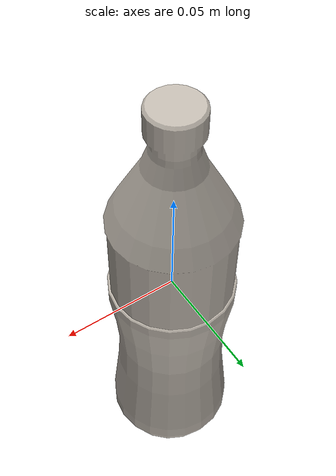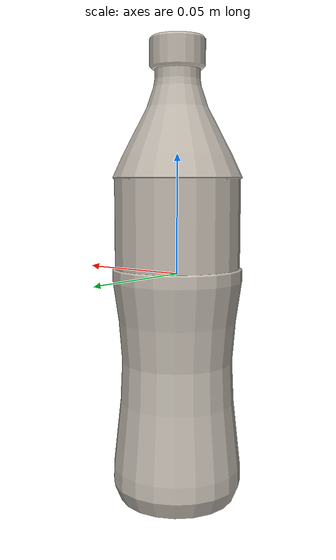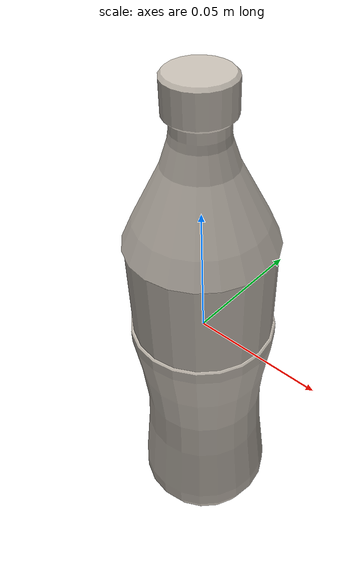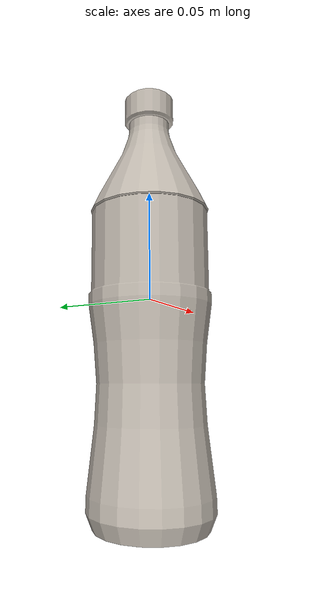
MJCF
<mujoco model="bottled_water_17">
  <asset>
    <mesh file="visual/model_normalized_0.obj" name="model_normalized_0_vis" scale="0.193939 0.193939 0.193939" refquat="1.0 0.0 0.0 0.0"/>
    <mesh file="visual/model_normalized_1.obj" name="model_normalized_1_vis" scale="0.193939 0.193939 0.193939" refquat="1.0 0.0 0.0 0.0"/>
    <mesh file="collision/model_normalized_collision_22.obj" name="model_normalized_collision_22._coll" scale="0.193939 0.193939 0.193939" refquat="1.0 0.0 0.0 0.0"/>
    <mesh file="collision/model_normalized_collision_23.obj" name="model_normalized_collision_23._coll" scale="0.193939 0.193939 0.193939" refquat="1.0 0.0 0.0 0.0"/>
    <mesh file="collision/model_normalized_collision_21.obj" name="model_normalized_collision_21._coll" scale="0.193939 0.193939 0.193939" refquat="1.0 0.0 0.0 0.0"/>
    <mesh file="collision/model_normalized_collision_20.obj" name="model_normalized_collision_20._coll" scale="0.193939 0.193939 0.193939" refquat="1.0 0.0 0.0 0.0"/>
    <mesh file="collision/model_normalized_collision_24.obj" name="model_normalized_collision_24._coll" scale="0.193939 0.193939 0.193939" refquat="1.0 0.0 0.0 0.0"/>
    <mesh file="collision/model_normalized_collision_30.obj" name="model_normalized_collision_30._coll" scale="0.193939 0.193939 0.193939" refquat="1.0 0.0 0.0 0.0"/>
    <mesh file="collision/model_normalized_collision_18.obj" name="model_normalized_collision_18._coll" scale="0.193939 0.193939 0.193939" refquat="1.0 0.0 0.0 0.0"/>
    <mesh file="collision/model_normalized_collision_19.obj" name="model_normalized_collision_19._coll" scale="0.193939 0.193939 0.193939" refquat="1.0 0.0 0.0 0.0"/>
    <mesh file="collision/model_normalized_collision_31.obj" name="model_normalized_collision_31._coll" scale="0.193939 0.193939 0.193939" refquat="1.0 0.0 0.0 0.0"/>
    <mesh file="collision/model_normalized_collision_25.obj" name="model_normalized_collision_25._coll" scale="0.193939 0.193939 0.193939" refquat="1.0 0.0 0.0 0.0"/>
    <mesh file="collision/model_normalized_collision_27.obj" name="model_normalized_collision_27._coll" scale="0.193939 0.193939 0.193939" refquat="1.0 0.0 0.0 0.0"/>
    <mesh file="collision/model_normalized_collision_26.obj" name="model_normalized_collision_26._coll" scale="0.193939 0.193939 0.193939" refquat="1.0 0.0 0.0 0.0"/>
    <mesh file="collision/model_normalized_collision_9.obj" name="model_normalized_collision_9._coll" scale="0.193939 0.193939 0.193939" refquat="1.0 0.0 0.0 0.0"/>
    <mesh file="collision/model_normalized_collision_8.obj" name="model_normalized_collision_8._coll" scale="0.193939 0.193939 0.193939" refquat="1.0 0.0 0.0 0.0"/>
    <mesh file="collision/model_normalized_collision_6.obj" name="model_normalized_collision_6._coll" scale="0.193939 0.193939 0.193939" refquat="1.0 0.0 0.0 0.0"/>
    <mesh file="collision/model_normalized_collision_7.obj" name="model_normalized_collision_7._coll" scale="0.193939 0.193939 0.193939" refquat="1.0 0.0 0.0 0.0"/>
    <mesh file="collision/model_normalized_collision_5.obj" name="model_normalized_collision_5._coll" scale="0.193939 0.193939 0.193939" refquat="1.0 0.0 0.0 0.0"/>
    <mesh file="collision/model_normalized_collision_4.obj" name="model_normalized_collision_4._coll" scale="0.193939 0.193939 0.193939" refquat="1.0 0.0 0.0 0.0"/>
    <mesh file="collision/model_normalized_collision_0.obj" name="model_normalized_collision_0._coll" scale="0.193939 0.193939 0.193939" refquat="1.0 0.0 0.0 0.0"/>
    <mesh file="collision/model_normalized_collision_1.obj" name="model_normalized_collision_1._coll" scale="0.193939 0.193939 0.193939" refquat="1.0 0.0 0.0 0.0"/>
    <mesh file="collision/model_normalized_collision_3.obj" name="model_normalized_collision_3._coll" scale="0.193939 0.193939 0.193939" refquat="1.0 0.0 0.0 0.0"/>
    <mesh file="collision/model_normalized_collision_2.obj" name="model_normalized_collision_2._coll" scale="0.193939 0.193939 0.193939" refquat="1.0 0.0 0.0 0.0"/>
    <mesh file="collision/model_normalized_collision_17.obj" name="model_normalized_collision_17._coll" scale="0.193939 0.193939 0.193939" refquat="1.0 0.0 0.0 0.0"/>
    <mesh file="collision/model_normalized_collision_16.obj" name="model_normalized_collision_16._coll" scale="0.193939 0.193939 0.193939" refquat="1.0 0.0 0.0 0.0"/>
    <mesh file="collision/model_normalized_collision_28.obj" name="model_normalized_collision_28._coll" scale="0.193939 0.193939 0.193939" refquat="1.0 0.0 0.0 0.0"/>
    <mesh file="collision/model_normalized_collision_14.obj" name="model_normalized_collision_14._coll" scale="0.193939 0.193939 0.193939" refquat="1.0 0.0 0.0 0.0"/>
    <mesh file="collision/model_normalized_collision_15.obj" name="model_normalized_collision_15._coll" scale="0.193939 0.193939 0.193939" refquat="1.0 0.0 0.0 0.0"/>
    <mesh file="collision/model_normalized_collision_29.obj" name="model_normalized_collision_29._coll" scale="0.193939 0.193939 0.193939" refquat="1.0 0.0 0.0 0.0"/>
    <mesh file="collision/model_normalized_collision_11.obj" name="model_normalized_collision_11._coll" scale="0.193939 0.193939 0.193939" refquat="1.0 0.0 0.0 0.0"/>
    <mesh file="collision/model_normalized_collision_10.obj" name="model_normalized_collision_10._coll" scale="0.193939 0.193939 0.193939" refquat="1.0 0.0 0.0 0.0"/>
    <mesh file="collision/model_normalized_collision_12.obj" name="model_normalized_collision_12._coll" scale="0.193939 0.193939 0.193939" refquat="1.0 0.0 0.0 0.0"/>
    <mesh file="collision/model_normalized_collision_13.obj" name="model_normalized_collision_13._coll" scale="0.193939 0.193939 0.193939" refquat="1.0 0.0 0.0 0.0"/>
    <texture type="2d" name="image1" file="visual/image1.png"/>
    <texture type="2d" name="image0" file="visual/image0.png"/>
    <material name="Fizzy_Bottle_MAT" texture="image1" specular="0.5" shininess="0.25"/>
    <material name="Soda_MAT" texture="image0" specular="0.5" shininess="0.0"/>
  </asset>
  <default>
    <default class="region">
      <geom group="1" conaffinity="0" contype="0" rgba="0 1 0 0"/>
    </default>
  </default>
  <worldbody>
    <body>
      <body name="object">
        <geom density="100" friction="0.95 0.3 0.1" type="mesh" mesh="model_normalized_0_vis" conaffinity="0" contype="0" group="1" material="Fizzy_Bottle_MAT"/>
        <geom density="100" friction="0.95 0.3 0.1" type="mesh" mesh="model_normalized_1_vis" conaffinity="0" contype="0" group="1" material="Soda_MAT"/>
        <geom density="100" friction="0.95 0.3 0.1" type="mesh" mesh="model_normalized_collision_22._coll" group="0" rgba="0.8 0.8 0.8 0.0" solref="0.004 1" solimp="0.998 0.998 0.001"/>
        <geom density="100" friction="0.95 0.3 0.1" type="mesh" mesh="model_normalized_collision_23._coll" group="0" rgba="0.8 0.8 0.8 0.0" solref="0.004 1" solimp="0.998 0.998 0.001"/>
        <geom density="100" friction="0.95 0.3 0.1" type="mesh" mesh="model_normalized_collision_21._coll" group="0" rgba="0.8 0.8 0.8 0.0" solref="0.004 1" solimp="0.998 0.998 0.001"/>
        <geom density="100" friction="0.95 0.3 0.1" type="mesh" mesh="model_normalized_collision_20._coll" group="0" rgba="0.8 0.8 0.8 0.0" solref="0.004 1" solimp="0.998 0.998 0.001"/>
        <geom density="100" friction="0.95 0.3 0.1" type="mesh" mesh="model_normalized_collision_24._coll" group="0" rgba="0.8 0.8 0.8 0.0" solref="0.004 1" solimp="0.998 0.998 0.001"/>
        <geom density="100" friction="0.95 0.3 0.1" type="mesh" mesh="model_normalized_collision_30._coll" group="0" rgba="0.8 0.8 0.8 0.0" solref="0.004 1" solimp="0.998 0.998 0.001"/>
        <geom density="100" friction="0.95 0.3 0.1" type="mesh" mesh="model_normalized_collision_18._coll" group="0" rgba="0.8 0.8 0.8 0.0" solref="0.004 1" solimp="0.998 0.998 0.001"/>
        <geom density="100" friction="0.95 0.3 0.1" type="mesh" mesh="model_normalized_collision_19._coll" group="0" rgba="0.8 0.8 0.8 0.0" solref="0.004 1" solimp="0.998 0.998 0.001"/>
        <geom density="100" friction="0.95 0.3 0.1" type="mesh" mesh="model_normalized_collision_31._coll" group="0" rgba="0.8 0.8 0.8 0.0" solref="0.004 1" solimp="0.998 0.998 0.001"/>
        <geom density="100" friction="0.95 0.3 0.1" type="mesh" mesh="model_normalized_collision_25._coll" group="0" rgba="0.8 0.8 0.8 0.0" solref="0.004 1" solimp="0.998 0.998 0.001"/>
        <geom density="100" friction="0.95 0.3 0.1" type="mesh" mesh="model_normalized_collision_27._coll" group="0" rgba="0.8 0.8 0.8 0.0" solref="0.004 1" solimp="0.998 0.998 0.001"/>
        <geom density="100" friction="0.95 0.3 0.1" type="mesh" mesh="model_normalized_collision_26._coll" group="0" rgba="0.8 0.8 0.8 0.0" solref="0.004 1" solimp="0.998 0.998 0.001"/>
        <geom density="100" friction="0.95 0.3 0.1" type="mesh" mesh="model_normalized_collision_9._coll" group="0" rgba="0.8 0.8 0.8 0.0" solref="0.004 1" solimp="0.998 0.998 0.001"/>
        <geom density="100" friction="0.95 0.3 0.1" type="mesh" mesh="model_normalized_collision_8._coll" group="0" rgba="0.8 0.8 0.8 0.0" solref="0.004 1" solimp="0.998 0.998 0.001"/>
        <geom density="100" friction="0.95 0.3 0.1" type="mesh" mesh="model_normalized_collision_6._coll" group="0" rgba="0.8 0.8 0.8 0.0" solref="0.004 1" solimp="0.998 0.998 0.001"/>
        <geom density="100" friction="0.95 0.3 0.1" type="mesh" mesh="model_normalized_collision_7._coll" group="0" rgba="0.8 0.8 0.8 0.0" solref="0.004 1" solimp="0.998 0.998 0.001"/>
        <geom density="100" friction="0.95 0.3 0.1" type="mesh" mesh="model_normalized_collision_5._coll" group="0" rgba="0.8 0.8 0.8 0.0" solref="0.004 1" solimp="0.998 0.998 0.001"/>
        <geom density="100" friction="0.95 0.3 0.1" type="mesh" mesh="model_normalized_collision_4._coll" group="0" rgba="0.8 0.8 0.8 0.0" solref="0.004 1" solimp="0.998 0.998 0.001"/>
        <geom density="100" friction="0.95 0.3 0.1" type="mesh" mesh="model_normalized_collision_0._coll" group="0" rgba="0.8 0.8 0.8 0.0" solref="0.004 1" solimp="0.998 0.998 0.001"/>
        <geom density="100" friction="0.95 0.3 0.1" type="mesh" mesh="model_normalized_collision_1._coll" group="0" rgba="0.8 0.8 0.8 0.0" solref="0.004 1" solimp="0.998 0.998 0.001"/>
        <geom density="100" friction="0.95 0.3 0.1" type="mesh" mesh="model_normalized_collision_3._coll" group="0" rgba="0.8 0.8 0.8 0.0" solref="0.004 1" solimp="0.998 0.998 0.001"/>
        <geom density="100" friction="0.95 0.3 0.1" type="mesh" mesh="model_normalized_collision_2._coll" group="0" rgba="0.8 0.8 0.8 0.0" solref="0.004 1" solimp="0.998 0.998 0.001"/>
        <geom density="100" friction="0.95 0.3 0.1" type="mesh" mesh="model_normalized_collision_17._coll" group="0" rgba="0.8 0.8 0.8 0.0" solref="0.004 1" solimp="0.998 0.998 0.001"/>
        <geom density="100" friction="0.95 0.3 0.1" type="mesh" mesh="model_normalized_collision_16._coll" group="0" rgba="0.8 0.8 0.8 0.0" solref="0.004 1" solimp="0.998 0.998 0.001"/>
        <geom density="100" friction="0.95 0.3 0.1" type="mesh" mesh="model_normalized_collision_28._coll" group="0" rgba="0.8 0.8 0.8 0.0" solref="0.004 1" solimp="0.998 0.998 0.001"/>
        <geom density="100" friction="0.95 0.3 0.1" type="mesh" mesh="model_normalized_collision_14._coll" group="0" rgba="0.8 0.8 0.8 0.0" solref="0.004 1" solimp="0.998 0.998 0.001"/>
        <geom density="100" friction="0.95 0.3 0.1" type="mesh" mesh="model_normalized_collision_15._coll" group="0" rgba="0.8 0.8 0.8 0.0" solref="0.004 1" solimp="0.998 0.998 0.001"/>
        <geom density="100" friction="0.95 0.3 0.1" type="mesh" mesh="model_normalized_collision_29._coll" group="0" rgba="0.8 0.8 0.8 0.0" solref="0.004 1" solimp="0.998 0.998 0.001"/>
        <geom density="100" friction="0.95 0.3 0.1" type="mesh" mesh="model_normalized_collision_11._coll" group="0" rgba="0.8 0.8 0.8 0.0" solref="0.004 1" solimp="0.998 0.998 0.001"/>
        <geom density="100" friction="0.95 0.3 0.1" type="mesh" mesh="model_normalized_collision_10._coll" group="0" rgba="0.8 0.8 0.8 0.0" solref="0.004 1" solimp="0.998 0.998 0.001"/>
        <geom density="100" friction="0.95 0.3 0.1" type="mesh" mesh="model_normalized_collision_12._coll" group="0" rgba="0.8 0.8 0.8 0.0" solref="0.004 1" solimp="0.998 0.998 0.001"/>
        <geom density="100" friction="0.95 0.3 0.1" type="mesh" mesh="model_normalized_collision_13._coll" group="0" rgba="0.8 0.8 0.8 0.0" solref="0.004 1" solimp="0.998 0.998 0.001"/>
        <geom class="region" name="reg_bbox" type="box" pos="9.56720000000022e-06 -0.0004561232000000004 -0.0004275320000000013" size="0.022158912000000003 0.021246665600000002 0.07957246640000001"/>
      </body>
    </body>
  </worldbody>
</mujoco>
